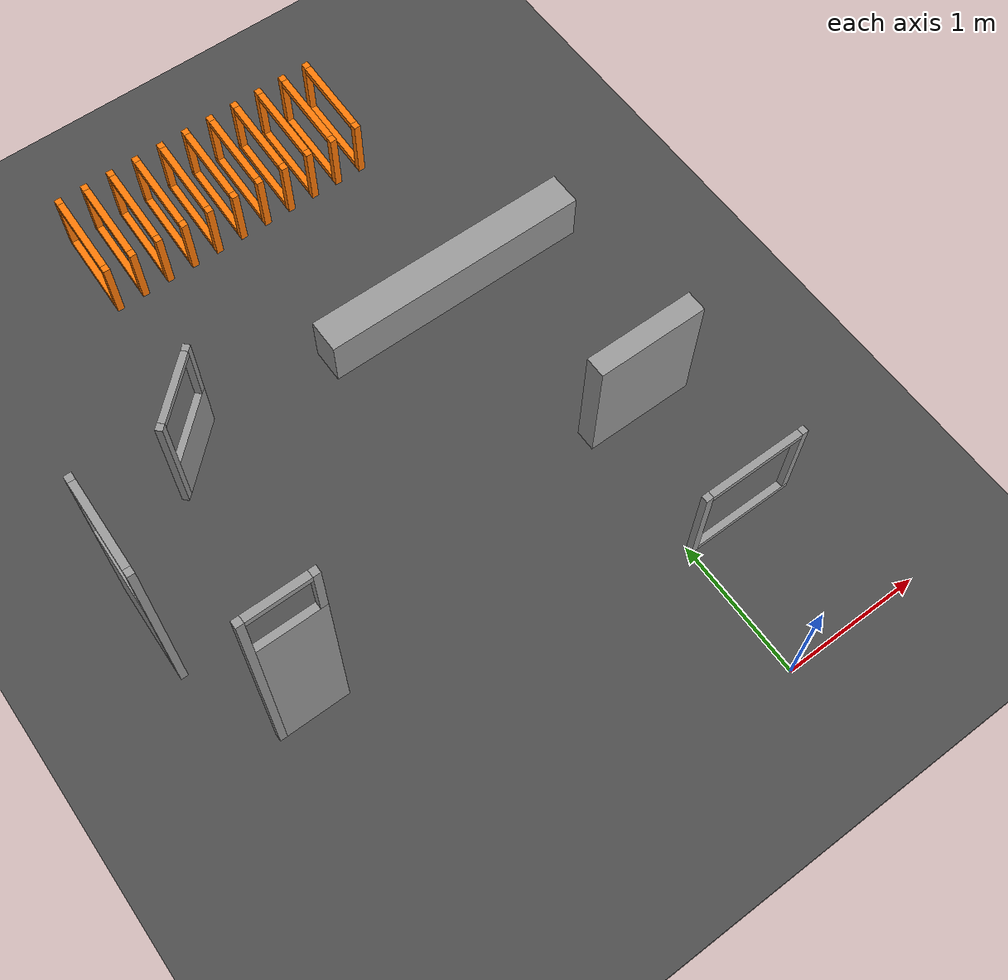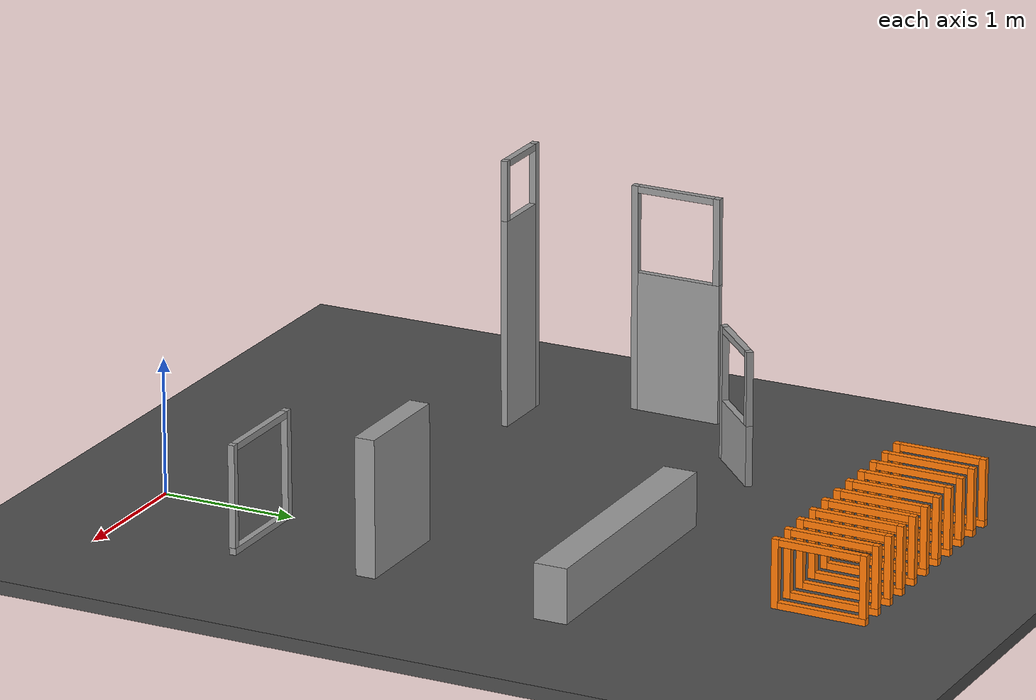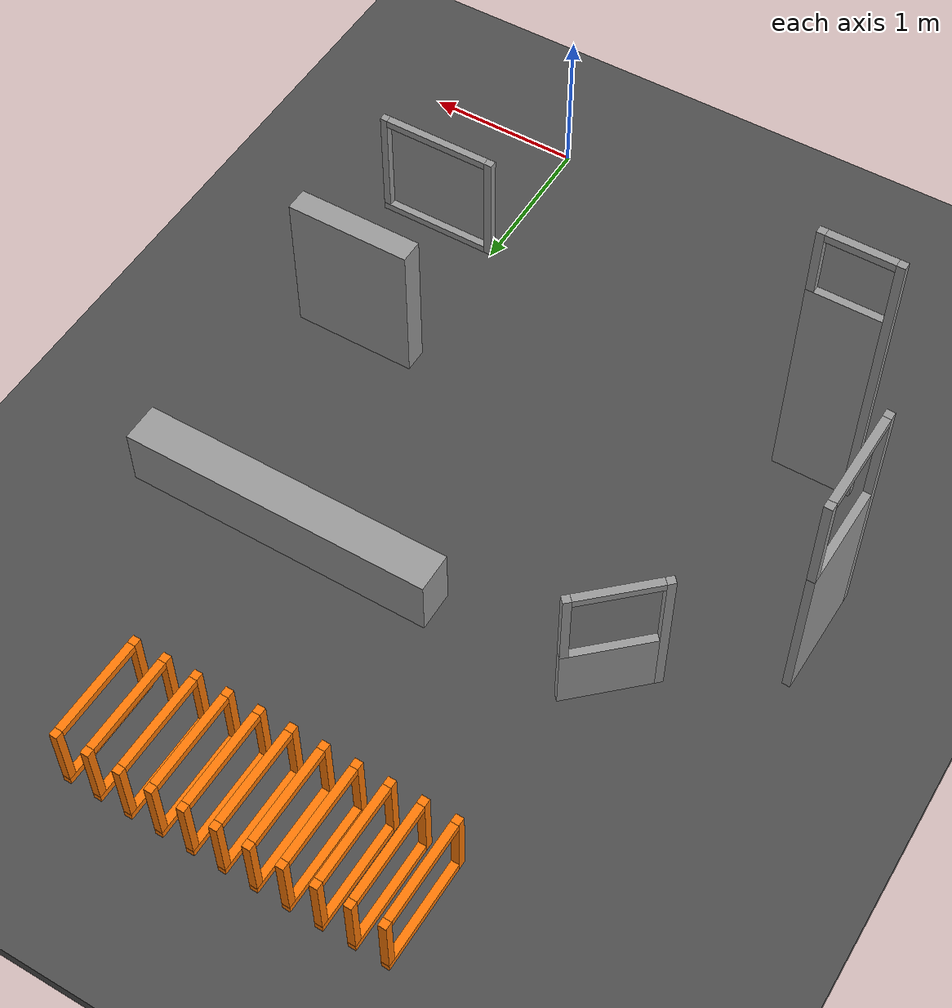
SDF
<sdf version="1.7">
 <world name="default">
  <light name="sun" type="directional">
   <pose>0 0 10 0 -0 0</pose>
   <diffuse>0.8 0.8 0.8 1</diffuse>
   <specular>0.2 0.2 0.2 1</specular>
   <attenuation>
    <range>1000</range>
    <constant>0.9</constant>
    <linear>0.01</linear>
    <quadratic>0.001</quadratic>
   </attenuation>
   <direction>-0.5 0.1 -0.9</direction>
   <spot><inner_angle>0</inner_angle><outer_angle>0</outer_angle><falloff>0</falloff></spot>
  </light>
  <model name="ground_plane">
   <static>1</static>
   <link name="link">
    <collision name="collision">
     <geometry><plane><normal>0 0 1</normal><size>100 100</size></plane></geometry>
     <surface>
      <contact><collide_bitmask>65535</collide_bitmask></contact>
      <friction><ode><mu>100</mu><mu2>50</mu2></ode></friction>
     </surface>
    </collision>
    <visual name="visual">
     <cast_shadows>0</cast_shadows>
     <geometry><plane><normal>0 0 1</normal><size>100 100</size></plane></geometry>
     <material>
      <script><uri>file://media/materials/scripts/gazebo.material</uri><name>Gazebo/Grey</name></script>
     </material>
    </visual>
   </link>
  </model>
  <gravity>0 0 -9.8</gravity>
  <magnetic_field>6e-06 2.3e-05 -4.2e-05</magnetic_field>
  <atmosphere type="adiabatic"/>
  <physics type="ode">
   <max_step_size>0.001</max_step_size>
   <real_time_factor>1</real_time_factor>
   <real_time_update_rate>1000</real_time_update_rate>
  </physics>
  <scene><ambient>0.4 0.4 0.4 1</ambient><background>0.7 0.7 0.7 1</background><shadows>1</shadows></scene>
  <spherical_coordinates>
   <surface_model>EARTH_WGS84</surface_model>
   <latitude_deg>0</latitude_deg>
   <longitude_deg>0</longitude_deg>
   <elevation>0</elevation>
   <heading_deg>0</heading_deg>
  </spherical_coordinates>
  <model name="Fenetre_debut_parcours">
   <pose>0.375 1.5 0 0 -0 0</pose>
   <link name="Wall_18">
    <pose>0.025 -0.525 0 0 -0 0</pose>
    <visual name="Wall_18_Visual_0">
     <pose>-0.373316 0 0.4 0 -0 0</pose>
     <geometry><box><size>0.053368 0.05 0.8</size></box></geometry>
     <material>
      <script><uri>file://media/materials/scripts/gazebo.material</uri><name>Gazebo/Grey</name></script>
      <ambient>1 1 1 1</ambient>
     </material>
     <meta><layer>0</layer></meta>
    </visual>
    <collision name="Wall_18_Collision_0">
     <geometry><box><size>0.053368 0.05 0.8</size></box></geometry>
     <pose>-0.373316 0 0.4 0 -0 0</pose>
    </collision>
    <visual name="Wall_18_Visual_1">
     <pose>0.026684 0 0.025 0 -0 0</pose>
     <geometry><box><size>0.746632 0.05 0.05</size></box></geometry>
     <material>
      <script><uri>file://media/materials/scripts/gazebo.material</uri><name>Gazebo/Grey</name></script>
      <ambient>1 1 1 1</ambient>
     </material>
     <meta><layer>0</layer></meta>
    </visual>
    <collision name="Wall_18_Collision_1">
     <geometry><box><size>0.746632 0.05 0.05</size></box></geometry>
     <pose>0.026684 0 0.025 0 -0 0</pose>
    </collision>
    <visual name="Wall_18_Visual_2">
     <pose>0.376684 0 0.425 0 -0 0</pose>
     <geometry><box><size>0.046632 0.05 0.75</size></box></geometry>
     <material>
      <script><uri>file://media/materials/scripts/gazebo.material</uri><name>Gazebo/Grey</name></script>
      <ambient>1 1 1 1</ambient>
     </material>
     <meta><layer>0</layer></meta>
    </visual>
    <collision name="Wall_18_Collision_2">
     <geometry><box><size>0.046632 0.05 0.75</size></box></geometry>
     <pose>0.376684 0 0.425 0 -0 0</pose>
    </collision>
    <visual name="Wall_18_Visual_3">
     <pose>0.003368 0 0.775 0 -0 0</pose>
     <geometry><box><size>0.7 0.05 0.05</size></box></geometry>
     <material>
      <script><uri>file://media/materials/scripts/gazebo.material</uri><name>Gazebo/Grey</name></script>
      <ambient>1 1 1 1</ambient>
     </material>
     <meta><layer>0</layer></meta>
    </visual>
    <collision name="Wall_18_Collision_3">
     <geometry><box><size>0.7 0.05 0.05</size></box></geometry>
     <pose>0.003368 0 0.775 0 -0 0</pose>
    </collision>
   </link>
   <link name="Wall_20">
    <collision name="Wall_20_Collision">
     <geometry><box><size>0.8 0.15 1</size></box></geometry>
     <pose>0 0 0.5 0 -0 0</pose>
    </collision>
    <visual name="Wall_20_Visual">
     <pose>0 0 0.5 0 -0 0</pose>
     <geometry><box><size>0.8 0.15 1</size></box></geometry>
     <material>
      <script><uri>file://media/materials/scripts/gazebo.material</uri><name>Gazebo/Grey</name></script>
      <ambient>1 1 1 1</ambient>
     </material>
     <meta><layer>0</layer></meta>
    </visual>
    <pose>-0.025 0.475 0 0 -0 0</pose>
   </link>
   <static>1</static>
  </model>
  <model name="Fenetre_pour_tunnel">
   <pose>-2 5 0 0 -0 1.55</pose>
   <link name="Wall_27">
    <visual name="Wall_27_Visual_0">
     <pose>-0.324617 0 0.25 0 -0 0</pose>
     <geometry><box><size>0.050767 0.05 0.5</size></box></geometry>
     <material>
      <script><uri>file://media/materials/scripts/gazebo.material</uri><name>Gazebo/Grey</name></script>
      <ambient>0.996078 0.47451 0.0196078 1</ambient>
     </material>
     <meta><layer>0</layer></meta>
    </visual>
    <collision name="Wall_27_Collision_0">
     <geometry><box><size>0.050767 0.05 0.5</size></box></geometry>
     <pose>-0.324617 0 0.25 0 -0 0</pose>
    </collision>
    <visual name="Wall_27_Visual_1">
     <pose>0.025383 0 0.025 0 -0 0</pose>
     <geometry><box><size>0.649233 0.05 0.05</size></box></geometry>
     <material>
      <script><uri>file://media/materials/scripts/gazebo.material</uri><name>Gazebo/Grey</name></script>
      <ambient>0.996078 0.47451 0.0196078 1</ambient>
     </material>
     <meta><layer>0</layer></meta>
    </visual>
    <collision name="Wall_27_Collision_1">
     <geometry><box><size>0.649233 0.05 0.05</size></box></geometry>
     <pose>0.025383 0 0.025 0 -0 0</pose>
    </collision>
    <visual name="Wall_27_Visual_2">
     <pose>0.325383 0 0.275 0 -0 0</pose>
     <geometry><box><size>0.049233 0.05 0.45</size></box></geometry>
     <material>
      <script><uri>file://media/materials/scripts/gazebo.material</uri><name>Gazebo/Grey</name></script>
      <ambient>0.996078 0.47451 0.0196078 1</ambient>
     </material>
     <meta><layer>0</layer></meta>
    </visual>
    <collision name="Wall_27_Collision_2">
     <geometry><box><size>0.049233 0.05 0.45</size></box></geometry>
     <pose>0.325383 0 0.275 0 -0 0</pose>
    </collision>
    <visual name="Wall_27_Visual_3">
     <pose>0.000767 0 0.475 0 -0 0</pose>
     <geometry><box><size>0.6 0.05 0.05</size></box></geometry>
     <material>
      <script><uri>file://media/materials/scripts/gazebo.material</uri><name>Gazebo/Grey</name></script>
      <ambient>0.996078 0.47451 0.0196078 1</ambient>
     </material>
     <meta><layer>0</layer></meta>
    </visual>
    <collision name="Wall_27_Collision_3">
     <geometry><box><size>0.6 0.05 0.05</size></box></geometry>
     <pose>0.000767 0 0.475 0 -0 0</pose>
    </collision>
   </link>
   <static>1</static>
  </model>
  <model name="Fenetre_pour_tunnel_clone">
   <pose>-1.8 5 0 0 -0 1.55</pose>
   <link name="Wall_27">
    <visual name="Wall_27_Visual_0">
     <pose>-0.324617 0 0.25 0 -0 0</pose>
     <geometry><box><size>0.050767 0.05 0.5</size></box></geometry>
     <material>
      <script><uri>file://media/materials/scripts/gazebo.material</uri><name>Gazebo/Grey</name></script>
      <ambient>0.996078 0.47451 0.0196078 1</ambient>
     </material>
     <meta><layer>0</layer></meta>
    </visual>
    <collision name="Wall_27_Collision_0">
     <geometry><box><size>0.050767 0.05 0.5</size></box></geometry>
     <pose>-0.324617 0 0.25 0 -0 0</pose>
    </collision>
    <visual name="Wall_27_Visual_1">
     <pose>0.025383 0 0.025 0 -0 0</pose>
     <geometry><box><size>0.649233 0.05 0.05</size></box></geometry>
     <material>
      <script><uri>file://media/materials/scripts/gazebo.material</uri><name>Gazebo/Grey</name></script>
      <ambient>0.996078 0.47451 0.0196078 1</ambient>
     </material>
     <meta><layer>0</layer></meta>
    </visual>
    <collision name="Wall_27_Collision_1">
     <geometry><box><size>0.649233 0.05 0.05</size></box></geometry>
     <pose>0.025383 0 0.025 0 -0 0</pose>
    </collision>
    <visual name="Wall_27_Visual_2">
     <pose>0.325383 0 0.275 0 -0 0</pose>
     <geometry><box><size>0.049233 0.05 0.45</size></box></geometry>
     <material>
      <script><uri>file://media/materials/scripts/gazebo.material</uri><name>Gazebo/Grey</name></script>
      <ambient>0.996078 0.47451 0.0196078 1</ambient>
     </material>
     <meta><layer>0</layer></meta>
    </visual>
    <collision name="Wall_27_Collision_2">
     <geometry><box><size>0.049233 0.05 0.45</size></box></geometry>
     <pose>0.325383 0 0.275 0 -0 0</pose>
    </collision>
    <visual name="Wall_27_Visual_3">
     <pose>0.000767 0 0.475 0 -0 0</pose>
     <geometry><box><size>0.6 0.05 0.05</size></box></geometry>
     <material>
      <script><uri>file://media/materials/scripts/gazebo.material</uri><name>Gazebo/Grey</name></script>
      <ambient>0.996078 0.47451 0.0196078 1</ambient>
     </material>
     <meta><layer>0</layer></meta>
    </visual>
    <collision name="Wall_27_Collision_3">
     <geometry><box><size>0.6 0.05 0.05</size></box></geometry>
     <pose>0.000767 0 0.475 0 -0 0</pose>
    </collision>
   </link>
   <static>1</static>
  </model>
  <model name="Fenetre_pour_tunnel_clone_clone">
   <pose>-1.6 5 0 0 -0 1.55</pose>
   <link name="Wall_27">
    <visual name="Wall_27_Visual_0">
     <pose>-0.324617 0 0.25 0 -0 0</pose>
     <geometry><box><size>0.050767 0.05 0.5</size></box></geometry>
     <material>
      <script><uri>file://media/materials/scripts/gazebo.material</uri><name>Gazebo/Grey</name></script>
      <ambient>0.996078 0.47451 0.0196078 1</ambient>
     </material>
     <meta><layer>0</layer></meta>
    </visual>
    <collision name="Wall_27_Collision_0">
     <geometry><box><size>0.050767 0.05 0.5</size></box></geometry>
     <pose>-0.324617 0 0.25 0 -0 0</pose>
    </collision>
    <visual name="Wall_27_Visual_1">
     <pose>0.025383 0 0.025 0 -0 0</pose>
     <geometry><box><size>0.649233 0.05 0.05</size></box></geometry>
     <material>
      <script><uri>file://media/materials/scripts/gazebo.material</uri><name>Gazebo/Grey</name></script>
      <ambient>0.996078 0.47451 0.0196078 1</ambient>
     </material>
     <meta><layer>0</layer></meta>
    </visual>
    <collision name="Wall_27_Collision_1">
     <geometry><box><size>0.649233 0.05 0.05</size></box></geometry>
     <pose>0.025383 0 0.025 0 -0 0</pose>
    </collision>
    <visual name="Wall_27_Visual_2">
     <pose>0.325383 0 0.275 0 -0 0</pose>
     <geometry><box><size>0.049233 0.05 0.45</size></box></geometry>
     <material>
      <script><uri>file://media/materials/scripts/gazebo.material</uri><name>Gazebo/Grey</name></script>
      <ambient>0.996078 0.47451 0.0196078 1</ambient>
     </material>
     <meta><layer>0</layer></meta>
    </visual>
    <collision name="Wall_27_Collision_2">
     <geometry><box><size>0.049233 0.05 0.45</size></box></geometry>
     <pose>0.325383 0 0.275 0 -0 0</pose>
    </collision>
    <visual name="Wall_27_Visual_3">
     <pose>0.000767 0 0.475 0 -0 0</pose>
     <geometry><box><size>0.6 0.05 0.05</size></box></geometry>
     <material>
      <script><uri>file://media/materials/scripts/gazebo.material</uri><name>Gazebo/Grey</name></script>
      <ambient>0.996078 0.47451 0.0196078 1</ambient>
     </material>
     <meta><layer>0</layer></meta>
    </visual>
    <collision name="Wall_27_Collision_3">
     <geometry><box><size>0.6 0.05 0.05</size></box></geometry>
     <pose>0.000767 0 0.475 0 -0 0</pose>
    </collision>
   </link>
   <static>1</static>
  </model>
  <model name="Fenetre_pour_tunnel_clone_clone_0">
   <pose>-1.4 5 0 0 -0 1.55</pose>
   <link name="Wall_27">
    <visual name="Wall_27_Visual_0">
     <pose>-0.324617 0 0.25 0 -0 0</pose>
     <geometry><box><size>0.050767 0.05 0.5</size></box></geometry>
     <material>
      <script><uri>file://media/materials/scripts/gazebo.material</uri><name>Gazebo/Grey</name></script>
      <ambient>0.996078 0.47451 0.0196078 1</ambient>
     </material>
     <meta><layer>0</layer></meta>
    </visual>
    <collision name="Wall_27_Collision_0">
     <geometry><box><size>0.050767 0.05 0.5</size></box></geometry>
     <pose>-0.324617 0 0.25 0 -0 0</pose>
    </collision>
    <visual name="Wall_27_Visual_1">
     <pose>0.025383 0 0.025 0 -0 0</pose>
     <geometry><box><size>0.649233 0.05 0.05</size></box></geometry>
     <material>
      <script><uri>file://media/materials/scripts/gazebo.material</uri><name>Gazebo/Grey</name></script>
      <ambient>0.996078 0.47451 0.0196078 1</ambient>
     </material>
     <meta><layer>0</layer></meta>
    </visual>
    <collision name="Wall_27_Collision_1">
     <geometry><box><size>0.649233 0.05 0.05</size></box></geometry>
     <pose>0.025383 0 0.025 0 -0 0</pose>
    </collision>
    <visual name="Wall_27_Visual_2">
     <pose>0.325383 0 0.275 0 -0 0</pose>
     <geometry><box><size>0.049233 0.05 0.45</size></box></geometry>
     <material>
      <script><uri>file://media/materials/scripts/gazebo.material</uri><name>Gazebo/Grey</name></script>
      <ambient>0.996078 0.47451 0.0196078 1</ambient>
     </material>
     <meta><layer>0</layer></meta>
    </visual>
    <collision name="Wall_27_Collision_2">
     <geometry><box><size>0.049233 0.05 0.45</size></box></geometry>
     <pose>0.325383 0 0.275 0 -0 0</pose>
    </collision>
    <visual name="Wall_27_Visual_3">
     <pose>0.000767 0 0.475 0 -0 0</pose>
     <geometry><box><size>0.6 0.05 0.05</size></box></geometry>
     <material>
      <script><uri>file://media/materials/scripts/gazebo.material</uri><name>Gazebo/Grey</name></script>
      <ambient>0.996078 0.47451 0.0196078 1</ambient>
     </material>
     <meta><layer>0</layer></meta>
    </visual>
    <collision name="Wall_27_Collision_3">
     <geometry><box><size>0.6 0.05 0.05</size></box></geometry>
     <pose>0.000767 0 0.475 0 -0 0</pose>
    </collision>
   </link>
   <static>1</static>
  </model>
  <model name="Fenetre_pour_tunnel_clone_clone_1">
   <pose>-1.2 5 0 0 -0 1.55</pose>
   <link name="Wall_27">
    <visual name="Wall_27_Visual_0">
     <pose>-0.324617 0 0.25 0 -0 0</pose>
     <geometry><box><size>0.050767 0.05 0.5</size></box></geometry>
     <material>
      <script><uri>file://media/materials/scripts/gazebo.material</uri><name>Gazebo/Grey</name></script>
      <ambient>0.996078 0.47451 0.0196078 1</ambient>
     </material>
     <meta><layer>0</layer></meta>
    </visual>
    <collision name="Wall_27_Collision_0">
     <geometry><box><size>0.050767 0.05 0.5</size></box></geometry>
     <pose>-0.324617 0 0.25 0 -0 0</pose>
    </collision>
    <visual name="Wall_27_Visual_1">
     <pose>0.025383 0 0.025 0 -0 0</pose>
     <geometry><box><size>0.649233 0.05 0.05</size></box></geometry>
     <material>
      <script><uri>file://media/materials/scripts/gazebo.material</uri><name>Gazebo/Grey</name></script>
      <ambient>0.996078 0.47451 0.0196078 1</ambient>
     </material>
     <meta><layer>0</layer></meta>
    </visual>
    <collision name="Wall_27_Collision_1">
     <geometry><box><size>0.649233 0.05 0.05</size></box></geometry>
     <pose>0.025383 0 0.025 0 -0 0</pose>
    </collision>
    <visual name="Wall_27_Visual_2">
     <pose>0.325383 0 0.275 0 -0 0</pose>
     <geometry><box><size>0.049233 0.05 0.45</size></box></geometry>
     <material>
      <script><uri>file://media/materials/scripts/gazebo.material</uri><name>Gazebo/Grey</name></script>
      <ambient>0.996078 0.47451 0.0196078 1</ambient>
     </material>
     <meta><layer>0</layer></meta>
    </visual>
    <collision name="Wall_27_Collision_2">
     <geometry><box><size>0.049233 0.05 0.45</size></box></geometry>
     <pose>0.325383 0 0.275 0 -0 0</pose>
    </collision>
    <visual name="Wall_27_Visual_3">
     <pose>0.000767 0 0.475 0 -0 0</pose>
     <geometry><box><size>0.6 0.05 0.05</size></box></geometry>
     <material>
      <script><uri>file://media/materials/scripts/gazebo.material</uri><name>Gazebo/Grey</name></script>
      <ambient>0.996078 0.47451 0.0196078 1</ambient>
     </material>
     <meta><layer>0</layer></meta>
    </visual>
    <collision name="Wall_27_Collision_3">
     <geometry><box><size>0.6 0.05 0.05</size></box></geometry>
     <pose>0.000767 0 0.475 0 -0 0</pose>
    </collision>
   </link>
   <static>1</static>
  </model>
  <model name="Fenetre_pour_tunnel_clone_clone_2">
   <pose>-1 5 0 0 -0 1.55</pose>
   <link name="Wall_27">
    <visual name="Wall_27_Visual_0">
     <pose>-0.324617 0 0.25 0 -0 0</pose>
     <geometry><box><size>0.050767 0.05 0.5</size></box></geometry>
     <material>
      <script><uri>file://media/materials/scripts/gazebo.material</uri><name>Gazebo/Grey</name></script>
      <ambient>0.996078 0.47451 0.0196078 1</ambient>
     </material>
     <meta><layer>0</layer></meta>
    </visual>
    <collision name="Wall_27_Collision_0">
     <geometry><box><size>0.050767 0.05 0.5</size></box></geometry>
     <pose>-0.324617 0 0.25 0 -0 0</pose>
    </collision>
    <visual name="Wall_27_Visual_1">
     <pose>0.025383 0 0.025 0 -0 0</pose>
     <geometry><box><size>0.649233 0.05 0.05</size></box></geometry>
     <material>
      <script><uri>file://media/materials/scripts/gazebo.material</uri><name>Gazebo/Grey</name></script>
      <ambient>0.996078 0.47451 0.0196078 1</ambient>
     </material>
     <meta><layer>0</layer></meta>
    </visual>
    <collision name="Wall_27_Collision_1">
     <geometry><box><size>0.649233 0.05 0.05</size></box></geometry>
     <pose>0.025383 0 0.025 0 -0 0</pose>
    </collision>
    <visual name="Wall_27_Visual_2">
     <pose>0.325383 0 0.275 0 -0 0</pose>
     <geometry><box><size>0.049233 0.05 0.45</size></box></geometry>
     <material>
      <script><uri>file://media/materials/scripts/gazebo.material</uri><name>Gazebo/Grey</name></script>
      <ambient>0.996078 0.47451 0.0196078 1</ambient>
     </material>
     <meta><layer>0</layer></meta>
    </visual>
    <collision name="Wall_27_Collision_2">
     <geometry><box><size>0.049233 0.05 0.45</size></box></geometry>
     <pose>0.325383 0 0.275 0 -0 0</pose>
    </collision>
    <visual name="Wall_27_Visual_3">
     <pose>0.000767 0 0.475 0 -0 0</pose>
     <geometry><box><size>0.6 0.05 0.05</size></box></geometry>
     <material>
      <script><uri>file://media/materials/scripts/gazebo.material</uri><name>Gazebo/Grey</name></script>
      <ambient>0.996078 0.47451 0.0196078 1</ambient>
     </material>
     <meta><layer>0</layer></meta>
    </visual>
    <collision name="Wall_27_Collision_3">
     <geometry><box><size>0.6 0.05 0.05</size></box></geometry>
     <pose>0.000767 0 0.475 0 -0 0</pose>
    </collision>
   </link>
   <static>1</static>
  </model>
  <model name="Fenetre_pour_tunnel_clone_clone_0_clone">
   <pose>-0.8 5 0 0 -0 1.55</pose>
   <link name="Wall_27">
    <visual name="Wall_27_Visual_0">
     <pose>-0.324617 0 0.25 0 -0 0</pose>
     <geometry><box><size>0.050767 0.05 0.5</size></box></geometry>
     <material>
      <script><uri>file://media/materials/scripts/gazebo.material</uri><name>Gazebo/Grey</name></script>
      <ambient>0.996078 0.47451 0.0196078 1</ambient>
     </material>
     <meta><layer>0</layer></meta>
    </visual>
    <collision name="Wall_27_Collision_0">
     <geometry><box><size>0.050767 0.05 0.5</size></box></geometry>
     <pose>-0.324617 0 0.25 0 -0 0</pose>
    </collision>
    <visual name="Wall_27_Visual_1">
     <pose>0.025383 0 0.025 0 -0 0</pose>
     <geometry><box><size>0.649233 0.05 0.05</size></box></geometry>
     <material>
      <script><uri>file://media/materials/scripts/gazebo.material</uri><name>Gazebo/Grey</name></script>
      <ambient>0.996078 0.47451 0.0196078 1</ambient>
     </material>
     <meta><layer>0</layer></meta>
    </visual>
    <collision name="Wall_27_Collision_1">
     <geometry><box><size>0.649233 0.05 0.05</size></box></geometry>
     <pose>0.025383 0 0.025 0 -0 0</pose>
    </collision>
    <visual name="Wall_27_Visual_2">
     <pose>0.325383 0 0.275 0 -0 0</pose>
     <geometry><box><size>0.049233 0.05 0.45</size></box></geometry>
     <material>
      <script><uri>file://media/materials/scripts/gazebo.material</uri><name>Gazebo/Grey</name></script>
      <ambient>0.996078 0.47451 0.0196078 1</ambient>
     </material>
     <meta><layer>0</layer></meta>
    </visual>
    <collision name="Wall_27_Collision_2">
     <geometry><box><size>0.049233 0.05 0.45</size></box></geometry>
     <pose>0.325383 0 0.275 0 -0 0</pose>
    </collision>
    <visual name="Wall_27_Visual_3">
     <pose>0.000767 0 0.475 0 -0 0</pose>
     <geometry><box><size>0.6 0.05 0.05</size></box></geometry>
     <material>
      <script><uri>file://media/materials/scripts/gazebo.material</uri><name>Gazebo/Grey</name></script>
      <ambient>0.996078 0.47451 0.0196078 1</ambient>
     </material>
     <meta><layer>0</layer></meta>
    </visual>
    <collision name="Wall_27_Collision_3">
     <geometry><box><size>0.6 0.05 0.05</size></box></geometry>
     <pose>0.000767 0 0.475 0 -0 0</pose>
    </collision>
   </link>
   <static>1</static>
  </model>
  <model name="Fenetre_pour_tunnel_clone_clone_0_clone_0">
   <pose>-0.6 5 0 0 -0 1.55</pose>
   <link name="Wall_27">
    <visual name="Wall_27_Visual_0">
     <pose>-0.324617 0 0.25 0 -0 0</pose>
     <geometry><box><size>0.050767 0.05 0.5</size></box></geometry>
     <material>
      <script><uri>file://media/materials/scripts/gazebo.material</uri><name>Gazebo/Grey</name></script>
      <ambient>0.996078 0.47451 0.0196078 1</ambient>
     </material>
     <meta><layer>0</layer></meta>
    </visual>
    <collision name="Wall_27_Collision_0">
     <geometry><box><size>0.050767 0.05 0.5</size></box></geometry>
     <pose>-0.324617 0 0.25 0 -0 0</pose>
    </collision>
    <visual name="Wall_27_Visual_1">
     <pose>0.025383 0 0.025 0 -0 0</pose>
     <geometry><box><size>0.649233 0.05 0.05</size></box></geometry>
     <material>
      <script><uri>file://media/materials/scripts/gazebo.material</uri><name>Gazebo/Grey</name></script>
      <ambient>0.996078 0.47451 0.0196078 1</ambient>
     </material>
     <meta><layer>0</layer></meta>
    </visual>
    <collision name="Wall_27_Collision_1">
     <geometry><box><size>0.649233 0.05 0.05</size></box></geometry>
     <pose>0.025383 0 0.025 0 -0 0</pose>
    </collision>
    <visual name="Wall_27_Visual_2">
     <pose>0.325383 0 0.275 0 -0 0</pose>
     <geometry><box><size>0.049233 0.05 0.45</size></box></geometry>
     <material>
      <script><uri>file://media/materials/scripts/gazebo.material</uri><name>Gazebo/Grey</name></script>
      <ambient>0.996078 0.47451 0.0196078 1</ambient>
     </material>
     <meta><layer>0</layer></meta>
    </visual>
    <collision name="Wall_27_Collision_2">
     <geometry><box><size>0.049233 0.05 0.45</size></box></geometry>
     <pose>0.325383 0 0.275 0 -0 0</pose>
    </collision>
    <visual name="Wall_27_Visual_3">
     <pose>0.000767 0 0.475 0 -0 0</pose>
     <geometry><box><size>0.6 0.05 0.05</size></box></geometry>
     <material>
      <script><uri>file://media/materials/scripts/gazebo.material</uri><name>Gazebo/Grey</name></script>
      <ambient>0.996078 0.47451 0.0196078 1</ambient>
     </material>
     <meta><layer>0</layer></meta>
    </visual>
    <collision name="Wall_27_Collision_3">
     <geometry><box><size>0.6 0.05 0.05</size></box></geometry>
     <pose>0.000767 0 0.475 0 -0 0</pose>
    </collision>
   </link>
   <static>1</static>
  </model>
  <model name="Fenetre_pour_tunnel_clone_clone_0_clone_1">
   <pose>-0.4 5 0 0 -0 1.55</pose>
   <link name="Wall_27">
    <visual name="Wall_27_Visual_0">
     <pose>-0.324617 0 0.25 0 -0 0</pose>
     <geometry><box><size>0.050767 0.05 0.5</size></box></geometry>
     <material>
      <script><uri>file://media/materials/scripts/gazebo.material</uri><name>Gazebo/Grey</name></script>
      <ambient>0.996078 0.47451 0.0196078 1</ambient>
     </material>
     <meta><layer>0</layer></meta>
    </visual>
    <collision name="Wall_27_Collision_0">
     <geometry><box><size>0.050767 0.05 0.5</size></box></geometry>
     <pose>-0.324617 0 0.25 0 -0 0</pose>
    </collision>
    <visual name="Wall_27_Visual_1">
     <pose>0.025383 0 0.025 0 -0 0</pose>
     <geometry><box><size>0.649233 0.05 0.05</size></box></geometry>
     <material>
      <script><uri>file://media/materials/scripts/gazebo.material</uri><name>Gazebo/Grey</name></script>
      <ambient>0.996078 0.47451 0.0196078 1</ambient>
     </material>
     <meta><layer>0</layer></meta>
    </visual>
    <collision name="Wall_27_Collision_1">
     <geometry><box><size>0.649233 0.05 0.05</size></box></geometry>
     <pose>0.025383 0 0.025 0 -0 0</pose>
    </collision>
    <visual name="Wall_27_Visual_2">
     <pose>0.325383 0 0.275 0 -0 0</pose>
     <geometry><box><size>0.049233 0.05 0.45</size></box></geometry>
     <material>
      <script><uri>file://media/materials/scripts/gazebo.material</uri><name>Gazebo/Grey</name></script>
      <ambient>0.996078 0.47451 0.0196078 1</ambient>
     </material>
     <meta><layer>0</layer></meta>
    </visual>
    <collision name="Wall_27_Collision_2">
     <geometry><box><size>0.049233 0.05 0.45</size></box></geometry>
     <pose>0.325383 0 0.275 0 -0 0</pose>
    </collision>
    <visual name="Wall_27_Visual_3">
     <pose>0.000767 0 0.475 0 -0 0</pose>
     <geometry><box><size>0.6 0.05 0.05</size></box></geometry>
     <material>
      <script><uri>file://media/materials/scripts/gazebo.material</uri><name>Gazebo/Grey</name></script>
      <ambient>0.996078 0.47451 0.0196078 1</ambient>
     </material>
     <meta><layer>0</layer></meta>
    </visual>
    <collision name="Wall_27_Collision_3">
     <geometry><box><size>0.6 0.05 0.05</size></box></geometry>
     <pose>0.000767 0 0.475 0 -0 0</pose>
    </collision>
   </link>
   <static>1</static>
  </model>
  <model name="Fenetre_pour_tunnel_clone_clone_0_clone_2">
   <pose>-0.2 5 0 0 -0 1.55</pose>
   <link name="Wall_27">
    <visual name="Wall_27_Visual_0">
     <pose>-0.324617 0 0.25 0 -0 0</pose>
     <geometry><box><size>0.050767 0.05 0.5</size></box></geometry>
     <material>
      <script><uri>file://media/materials/scripts/gazebo.material</uri><name>Gazebo/Grey</name></script>
      <ambient>0.996078 0.47451 0.0196078 1</ambient>
     </material>
     <meta><layer>0</layer></meta>
    </visual>
    <collision name="Wall_27_Collision_0">
     <geometry><box><size>0.050767 0.05 0.5</size></box></geometry>
     <pose>-0.324617 0 0.25 0 -0 0</pose>
    </collision>
    <visual name="Wall_27_Visual_1">
     <pose>0.025383 0 0.025 0 -0 0</pose>
     <geometry><box><size>0.649233 0.05 0.05</size></box></geometry>
     <material>
      <script><uri>file://media/materials/scripts/gazebo.material</uri><name>Gazebo/Grey</name></script>
      <ambient>0.996078 0.47451 0.0196078 1</ambient>
     </material>
     <meta><layer>0</layer></meta>
    </visual>
    <collision name="Wall_27_Collision_1">
     <geometry><box><size>0.649233 0.05 0.05</size></box></geometry>
     <pose>0.025383 0 0.025 0 -0 0</pose>
    </collision>
    <visual name="Wall_27_Visual_2">
     <pose>0.325383 0 0.275 0 -0 0</pose>
     <geometry><box><size>0.049233 0.05 0.45</size></box></geometry>
     <material>
      <script><uri>file://media/materials/scripts/gazebo.material</uri><name>Gazebo/Grey</name></script>
      <ambient>0.996078 0.47451 0.0196078 1</ambient>
     </material>
     <meta><layer>0</layer></meta>
    </visual>
    <collision name="Wall_27_Collision_2">
     <geometry><box><size>0.049233 0.05 0.45</size></box></geometry>
     <pose>0.325383 0 0.275 0 -0 0</pose>
    </collision>
    <visual name="Wall_27_Visual_3">
     <pose>0.000767 0 0.475 0 -0 0</pose>
     <geometry><box><size>0.6 0.05 0.05</size></box></geometry>
     <material>
      <script><uri>file://media/materials/scripts/gazebo.material</uri><name>Gazebo/Grey</name></script>
      <ambient>0.996078 0.47451 0.0196078 1</ambient>
     </material>
     <meta><layer>0</layer></meta>
    </visual>
    <collision name="Wall_27_Collision_3">
     <geometry><box><size>0.6 0.05 0.05</size></box></geometry>
     <pose>0.000767 0 0.475 0 -0 0</pose>
    </collision>
   </link>
   <static>1</static>
  </model>
  <model name="Fenetre_pour_tunnel_clone_clone_0_clone_3">
   <pose>0 5 0 0 -0 1.55</pose>
   <link name="Wall_27">
    <visual name="Wall_27_Visual_0">
     <pose>-0.324617 0 0.25 0 -0 0</pose>
     <geometry><box><size>0.050767 0.05 0.5</size></box></geometry>
     <material>
      <script><uri>file://media/materials/scripts/gazebo.material</uri><name>Gazebo/Grey</name></script>
      <ambient>0.996078 0.47451 0.0196078 1</ambient>
     </material>
     <meta><layer>0</layer></meta>
    </visual>
    <collision name="Wall_27_Collision_0">
     <geometry><box><size>0.050767 0.05 0.5</size></box></geometry>
     <pose>-0.324617 0 0.25 0 -0 0</pose>
    </collision>
    <visual name="Wall_27_Visual_1">
     <pose>0.025383 0 0.025 0 -0 0</pose>
     <geometry><box><size>0.649233 0.05 0.05</size></box></geometry>
     <material>
      <script><uri>file://media/materials/scripts/gazebo.material</uri><name>Gazebo/Grey</name></script>
      <ambient>0.996078 0.47451 0.0196078 1</ambient>
     </material>
     <meta><layer>0</layer></meta>
    </visual>
    <collision name="Wall_27_Collision_1">
     <geometry><box><size>0.649233 0.05 0.05</size></box></geometry>
     <pose>0.025383 0 0.025 0 -0 0</pose>
    </collision>
    <visual name="Wall_27_Visual_2">
     <pose>0.325383 0 0.275 0 -0 0</pose>
     <geometry><box><size>0.049233 0.05 0.45</size></box></geometry>
     <material>
      <script><uri>file://media/materials/scripts/gazebo.material</uri><name>Gazebo/Grey</name></script>
      <ambient>0.996078 0.47451 0.0196078 1</ambient>
     </material>
     <meta><layer>0</layer></meta>
    </visual>
    <collision name="Wall_27_Collision_2">
     <geometry><box><size>0.049233 0.05 0.45</size></box></geometry>
     <pose>0.325383 0 0.275 0 -0 0</pose>
    </collision>
    <visual name="Wall_27_Visual_3">
     <pose>0.000767 0 0.475 0 -0 0</pose>
     <geometry><box><size>0.6 0.05 0.05</size></box></geometry>
     <material>
      <script><uri>file://media/materials/scripts/gazebo.material</uri><name>Gazebo/Grey</name></script>
      <ambient>0.996078 0.47451 0.0196078 1</ambient>
     </material>
     <meta><layer>0</layer></meta>
    </visual>
    <collision name="Wall_27_Collision_3">
     <geometry><box><size>0.6 0.05 0.05</size></box></geometry>
     <pose>0.000767 0 0.475 0 -0 0</pose>
    </collision>
   </link>
   <static>1</static>
  </model>
  <model name="Fenetre_60">
   <pose>-3 2.5 0 0 -0 1.55</pose>
   <link name="Wall_0">
    <visual name="Wall_0_Visual_0">
     <pose>-0.324957 0 0.85 0 -0 0</pose>
     <geometry><box><size>0.050086 0.05 1.7</size></box></geometry>
     <material>
      <script><uri>file://media/materials/scripts/gazebo.material</uri><name>Gazebo/Grey</name></script>
      <ambient>1 1 1 1</ambient>
     </material>
     <meta><layer>0</layer></meta>
    </visual>
    <collision name="Wall_0_Collision_0">
     <geometry><box><size>0.050086 0.05 1.7</size></box></geometry>
     <pose>-0.324957 0 0.85 0 -0 0</pose>
    </collision>
    <visual name="Wall_0_Visual_1">
     <pose>0.025043 0 0.525 0 -0 0</pose>
     <geometry><box><size>0.649914 0.05 1.05</size></box></geometry>
     <material>
      <script><uri>file://media/materials/scripts/gazebo.material</uri><name>Gazebo/Grey</name></script>
      <ambient>1 1 1 1</ambient>
     </material>
     <meta><layer>0</layer></meta>
    </visual>
    <collision name="Wall_0_Collision_1">
     <geometry><box><size>0.649914 0.05 1.05</size></box></geometry>
     <pose>0.025043 0 0.525 0 -0 0</pose>
    </collision>
    <visual name="Wall_0_Visual_2">
     <pose>0.325043 0 1.375 0 -0 0</pose>
     <geometry><box><size>0.049914 0.05 0.65</size></box></geometry>
     <material>
      <script><uri>file://media/materials/scripts/gazebo.material</uri><name>Gazebo/Grey</name></script>
      <ambient>1 1 1 1</ambient>
     </material>
     <meta><layer>0</layer></meta>
    </visual>
    <collision name="Wall_0_Collision_2">
     <geometry><box><size>0.049914 0.05 0.65</size></box></geometry>
     <pose>0.325043 0 1.375 0 -0 0</pose>
    </collision>
    <visual name="Wall_0_Visual_3">
     <pose>8.6e-05 0 1.675 0 -0 0</pose>
     <geometry><box><size>0.6 0.05 0.05</size></box></geometry>
     <material>
      <script><uri>file://media/materials/scripts/gazebo.material</uri><name>Gazebo/Grey</name></script>
      <ambient>1 1 1 1</ambient>
     </material>
     <meta><layer>0</layer></meta>
    </visual>
    <collision name="Wall_0_Collision_3">
     <geometry><box><size>0.6 0.05 0.05</size></box></geometry>
     <pose>8.6e-05 0 1.675 0 -0 0</pose>
    </collision>
   </link>
   <static>1</static>
  </model>
  <model name="Fenetre_50">
   <pose>-2.17113 3.36469 0 0 -0 0.75</pose>
   <link name="Wall_2">
    <visual name="Wall_2_Visual_0">
     <pose>-0.274595 0 0.5 0 -0 0</pose>
     <geometry><box><size>0.05081 0.05 1</size></box></geometry>
     <material>
      <script><uri>file://media/materials/scripts/gazebo.material</uri><name>Gazebo/Grey</name></script>
      <ambient>1 1 1 1</ambient>
     </material>
     <meta><layer>0</layer></meta>
    </visual>
    <collision name="Wall_2_Collision_0">
     <geometry><box><size>0.05081 0.05 1</size></box></geometry>
     <pose>-0.274595 0 0.5 0 -0 0</pose>
    </collision>
    <visual name="Wall_2_Visual_1">
     <pose>0.025405 0 0.225 0 -0 0</pose>
     <geometry><box><size>0.54919 0.05 0.45</size></box></geometry>
     <material>
      <script><uri>file://media/materials/scripts/gazebo.material</uri><name>Gazebo/Grey</name></script>
      <ambient>1 1 1 1</ambient>
     </material>
     <meta><layer>0</layer></meta>
    </visual>
    <collision name="Wall_2_Collision_1">
     <geometry><box><size>0.54919 0.05 0.45</size></box></geometry>
     <pose>0.025405 0 0.225 0 -0 0</pose>
    </collision>
    <visual name="Wall_2_Visual_2">
     <pose>0.275405 0 0.725 0 -0 0</pose>
     <geometry><box><size>0.04919 0.05 0.55</size></box></geometry>
     <material>
      <script><uri>file://media/materials/scripts/gazebo.material</uri><name>Gazebo/Grey</name></script>
      <ambient>1 1 1 1</ambient>
     </material>
     <meta><layer>0</layer></meta>
    </visual>
    <collision name="Wall_2_Collision_2">
     <geometry><box><size>0.04919 0.05 0.55</size></box></geometry>
     <pose>0.275405 0 0.725 0 -0 0</pose>
    </collision>
    <visual name="Wall_2_Visual_3">
     <pose>0.00081 0 0.975 0 -0 0</pose>
     <geometry><box><size>0.5 0.05 0.05</size></box></geometry>
     <material>
      <script><uri>file://media/materials/scripts/gazebo.material</uri><name>Gazebo/Grey</name></script>
      <ambient>1 1 1 1</ambient>
     </material>
     <meta><layer>0</layer></meta>
    </visual>
    <collision name="Wall_2_Collision_3">
     <geometry><box><size>0.5 0.05 0.05</size></box></geometry>
     <pose>0.00081 0 0.975 0 -0 0</pose>
    </collision>
   </link>
   <static>1</static>
  </model>
  <model name="Fenetre_40">
   <pose>-2.5 1.5 0 0 -0 0</pose>
   <link name="Wall_4">
    <visual name="Wall_4_Visual_0">
     <pose>-0.224479 0 1 0 -0 0</pose>
     <geometry><box><size>0.051042 0.05 2</size></box></geometry>
     <material>
      <script><uri>file://media/materials/scripts/gazebo.material</uri><name>Gazebo/Grey</name></script>
      <ambient>1 1 1 1</ambient>
     </material>
     <meta><layer>0</layer></meta>
    </visual>
    <collision name="Wall_4_Collision_0">
     <geometry><box><size>0.051042 0.05 2</size></box></geometry>
     <pose>-0.224479 0 1 0 -0 0</pose>
    </collision>
    <visual name="Wall_4_Visual_1">
     <pose>0.025521 0 0.775 0 -0 0</pose>
     <geometry><box><size>0.448958 0.05 1.55</size></box></geometry>
     <material>
      <script><uri>file://media/materials/scripts/gazebo.material</uri><name>Gazebo/Grey</name></script>
      <ambient>1 1 1 1</ambient>
     </material>
     <meta><layer>0</layer></meta>
    </visual>
    <collision name="Wall_4_Collision_1">
     <geometry><box><size>0.448958 0.05 1.55</size></box></geometry>
     <pose>0.025521 0 0.775 0 -0 0</pose>
    </collision>
    <visual name="Wall_4_Visual_2">
     <pose>0.225521 0 1.775 0 -0 0</pose>
     <geometry><box><size>0.048958 0.05 0.45</size></box></geometry>
     <material>
      <script><uri>file://media/materials/scripts/gazebo.material</uri><name>Gazebo/Grey</name></script>
      <ambient>1 1 1 1</ambient>
     </material>
     <meta><layer>0</layer></meta>
    </visual>
    <collision name="Wall_4_Collision_2">
     <geometry><box><size>0.048958 0.05 0.45</size></box></geometry>
     <pose>0.225521 0 1.775 0 -0 0</pose>
    </collision>
    <visual name="Wall_4_Visual_3">
     <pose>0.001042 0 1.975 0 -0 0</pose>
     <geometry><box><size>0.4 0.05 0.05</size></box></geometry>
     <material>
      <script><uri>file://media/materials/scripts/gazebo.material</uri><name>Gazebo/Grey</name></script>
      <ambient>1 1 1 1</ambient>
     </material>
     <meta><layer>0</layer></meta>
    </visual>
    <collision name="Wall_4_Collision_3">
     <geometry><box><size>0.4 0.05 0.05</size></box></geometry>
     <pose>0.001042 0 1.975 0 -0 0</pose>
    </collision>
   </link>
   <static>1</static>
  </model>
  <model name="Bloc_sol">
   <pose>-0.106443 3.51517 0 0 -0 0</pose>
   <link name="Wall_7">
    <collision name="Wall_7_Collision">
     <geometry><box><size>2 0.25 0.4</size></box></geometry>
     <pose>0 0 0.2 0 -0 0</pose>
    </collision>
    <visual name="Wall_7_Visual">
     <pose>0 0 0.2 0 -0 0</pose>
     <geometry><box><size>2 0.25 0.4</size></box></geometry>
     <material>
      <script><uri>file://media/materials/scripts/gazebo.material</uri><name>Gazebo/Grey</name></script>
      <ambient>1 1 1 1</ambient>
     </material>
     <meta><layer>0</layer></meta>
    </visual>
    <pose>0 -0.0735 0 0 -0 0</pose>
   </link>
   <static>1</static>
  </model>
  <model name="asphalt_plane">
   <static>1</static>
   <link name="link">
    <collision name="collision"><geometry><box><size>20 20 0.1</size></box></geometry></collision>
    <visual name="visual">
     <cast_shadows>0</cast_shadows>
     <geometry><box><size>20 20 0.1</size></box></geometry>
     <material>
      <script>
       <uri>model://asphalt_plane/materials/scripts</uri>
       <uri>model://asphalt_plane/materials/textures</uri>
       <name>vrc/asphalt</name>
      </script>
     </material>
    </visual>
   </link>
   <pose>0 0 -0.049 0 -0 0</pose>
  </model>
 </world>
</sdf>
